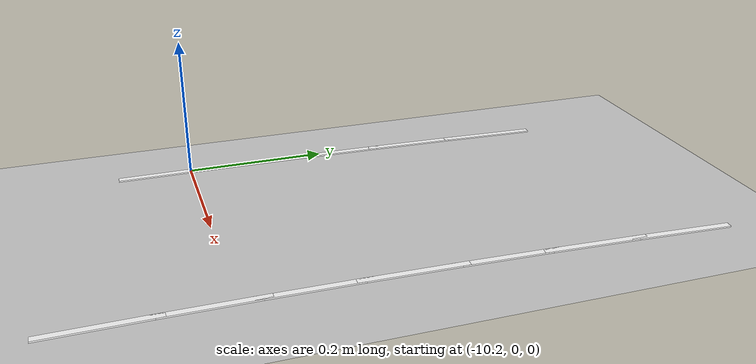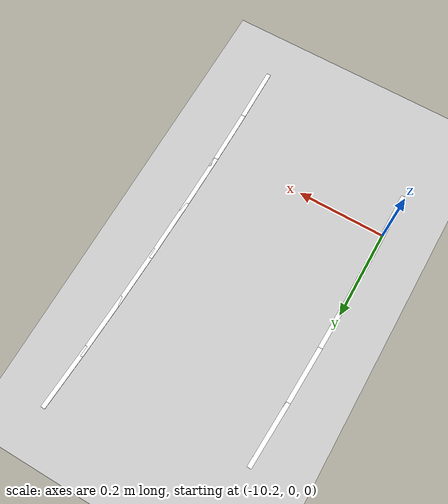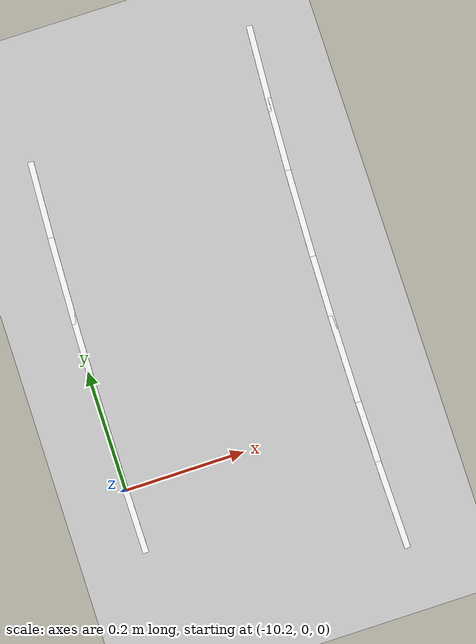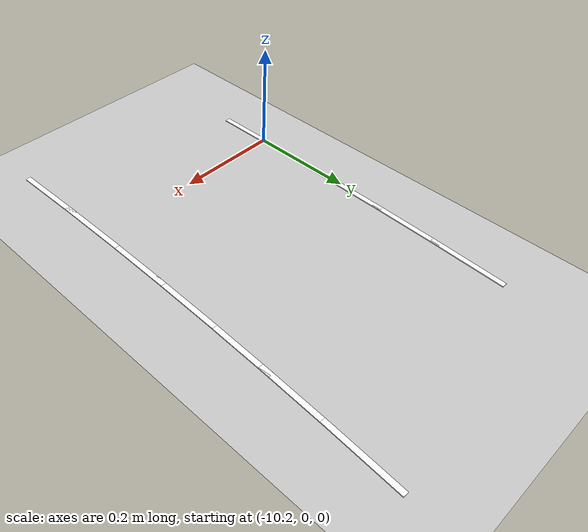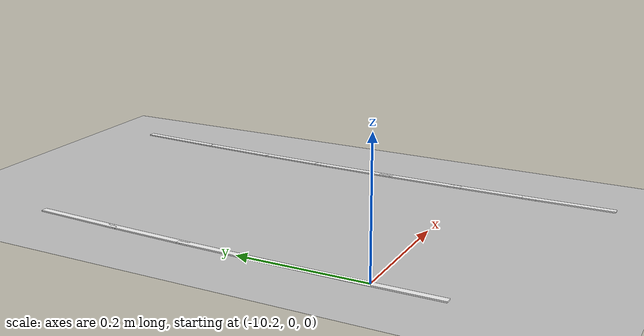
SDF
<sdf version="1.7">
 <world name="default">
  <model name="ground_plane">
   <static>1</static>
   <link name="link">
    <collision name="collision">
     <geometry><plane><normal>0 0 1</normal><size>100 100</size></plane></geometry>
     <surface>
      <contact><collide_bitmask>65535</collide_bitmask></contact>
      <friction><ode><mu>100</mu><mu2>50</mu2></ode></friction>
     </surface>
    </collision>
    <visual name="visual">
     <cast_shadows>0</cast_shadows>
     <geometry><plane><normal>0 0 1</normal><size>100 100</size></plane></geometry>
     <material>
      <script><uri>file://media/materials/scripts/gazebo.material</uri><name>Gazebo/Grey</name></script>
     </material>
    </visual>
   </link>
  </model>
  <model name="lane_line_left_369">
   <static>1</static>
   <link name="link">
    <pose>0 0 -0.004 0 -0 0</pose>
    <visual name="visual">
     <geometry><box><size>0.1452 0.01 0.01</size></box></geometry>
     <material><ambient>1 1 1 1</ambient><diffuse>1 1 1 1</diffuse></material>
    </visual>
    <collision name="collision"><geometry><box><size>0.1452 0.01 0.01</size></box></geometry></collision>
   </link>
   <pose>-9.78228 0.584607 0 0 0 -1.63093</pose>
  </model>
  <model name="lane_line_left_370">
   <static>1</static>
   <link name="link">
    <pose>0 0 -0.004 0 -0 0</pose>
    <visual name="visual">
     <geometry><box><size>0.1455 0.01 0.01</size></box></geometry>
     <material><ambient>1 1 1 1</ambient><diffuse>1 1 1 1</diffuse></material>
    </visual>
    <collision name="collision"><geometry><box><size>0.1455 0.01 0.01</size></box></geometry></collision>
   </link>
   <pose>-9.78888 0.461972 0 0 0 -1.61817</pose>
  </model>
  <model name="lane_line_right_370">
   <static>1</static>
   <link name="link">
    <pose>0 0 -0.004 0 -0 0</pose>
    <visual name="visual">
     <geometry><box><size>0.1455 0.01 0.01</size></box></geometry>
     <material><ambient>1 1 1 1</ambient><diffuse>1 1 1 1</diffuse></material>
    </visual>
    <collision name="collision"><geometry><box><size>0.1455 0.01 0.01</size></box></geometry></collision>
   </link>
   <pose>-10.1884 0.480916 0 0 0 -1.61817</pose>
  </model>
  <model name="lane_line_left_371">
   <static>1</static>
   <link name="link">
    <pose>0 0 -0.004 0 -0 0</pose>
    <visual name="visual">
     <geometry><box><size>0.1457 0.01 0.01</size></box></geometry>
     <material><ambient>1 1 1 1</ambient><diffuse>1 1 1 1</diffuse></material>
    </visual>
    <collision name="collision"><geometry><box><size>0.1457 0.01 0.01</size></box></geometry></collision>
   </link>
   <pose>-9.79393 0.339027 0 0 0 -1.60549</pose>
  </model>
  <model name="lane_line_right_371">
   <static>1</static>
   <link name="link">
    <pose>0 0 -0.004 0 -0 0</pose>
    <visual name="visual">
     <geometry><box><size>0.1457 0.01 0.01</size></box></geometry>
     <material><ambient>1 1 1 1</ambient><diffuse>1 1 1 1</diffuse></material>
    </visual>
    <collision name="collision"><geometry><box><size>0.1457 0.01 0.01</size></box></geometry></collision>
   </link>
   <pose>-10.1937 0.3529 0 0 0 -1.60549</pose>
  </model>
  <model name="lane_line_left_372">
   <static>1</static>
   <link name="link">
    <pose>0 0 -0.004 0 -0 0</pose>
    <visual name="visual">
     <geometry><box><size>0.1458 0.01 0.01</size></box></geometry>
     <material><ambient>1 1 1 1</ambient><diffuse>1 1 1 1</diffuse></material>
    </visual>
    <collision name="collision"><geometry><box><size>0.1458 0.01 0.01</size></box></geometry></collision>
   </link>
   <pose>-9.79742 0.215853 0 0 0 -1.59285</pose>
  </model>
  <model name="lane_line_right_372">
   <static>1</static>
   <link name="link">
    <pose>0 0 -0.004 0 -0 0</pose>
    <visual name="visual">
     <geometry><box><size>0.1458 0.01 0.01</size></box></geometry>
     <material><ambient>1 1 1 1</ambient><diffuse>1 1 1 1</diffuse></material>
    </visual>
    <collision name="collision"><geometry><box><size>0.1458 0.01 0.01</size></box></geometry></collision>
   </link>
   <pose>-10.1973 0.224673 0 0 0 -1.59285</pose>
  </model>
  <model name="lane_line_left_373">
   <static>1</static>
   <link name="link">
    <pose>0 0 -0.004 0 -0 0</pose>
    <visual name="visual">
     <geometry><box><size>0.1459 0.01 0.01</size></box></geometry>
     <material><ambient>1 1 1 1</ambient><diffuse>1 1 1 1</diffuse></material>
    </visual>
    <collision name="collision"><geometry><box><size>0.1459 0.01 0.01</size></box></geometry></collision>
   </link>
   <pose>-9.79936 0.092535 0 0 0 -1.58024</pose>
  </model>
  <model name="lane_line_right_373">
   <static>1</static>
   <link name="link">
    <pose>0 0 -0.004 0 -0 0</pose>
    <visual name="visual">
     <geometry><box><size>0.1459 0.01 0.01</size></box></geometry>
     <material><ambient>1 1 1 1</ambient><diffuse>1 1 1 1</diffuse></material>
    </visual>
    <collision name="collision"><geometry><box><size>0.1459 0.01 0.01</size></box></geometry></collision>
   </link>
   <pose>-10.1993 0.096313 0 0 0 -1.58024</pose>
  </model>
  <model name="lane_line_left_374">
   <static>1</static>
   <link name="link">
    <pose>0 0 -0.004 0 -0 0</pose>
    <visual name="visual">
     <geometry><box><size>0.1459 0.01 0.01</size></box></geometry>
     <material><ambient>1 1 1 1</ambient><diffuse>1 1 1 1</diffuse></material>
    </visual>
    <collision name="collision"><geometry><box><size>0.1459 0.01 0.01</size></box></geometry></collision>
   </link>
   <pose>-9.79975 -0.030847 0 0 0 -1.56765</pose>
  </model>
  <model name="lane_line_right_374">
   <static>1</static>
   <link name="link">
    <pose>0 0 -0.004 0 -0 0</pose>
    <visual name="visual">
     <geometry><box><size>0.1459 0.01 0.01</size></box></geometry>
     <material><ambient>1 1 1 1</ambient><diffuse>1 1 1 1</diffuse></material>
    </visual>
    <collision name="collision"><geometry><box><size>0.1459 0.01 0.01</size></box></geometry></collision>
   </link>
   <pose>-10.1998 -0.032106 0 0 0 -1.56765</pose>
  </model>
  <model name="lane_line_left_375">
   <static>1</static>
   <link name="link">
    <pose>0 0 -0.004 0 -0 0</pose>
    <visual name="visual">
     <geometry><box><size>0.1459 0.01 0.01</size></box></geometry>
     <material><ambient>1 1 1 1</ambient><diffuse>1 1 1 1</diffuse></material>
    </visual>
    <collision name="collision"><geometry><box><size>0.1459 0.01 0.01</size></box></geometry></collision>
   </link>
   <pose>-9.79859 -0.154207 0 0 0 -1.55505</pose>
  </model>
 </world>
</sdf>
